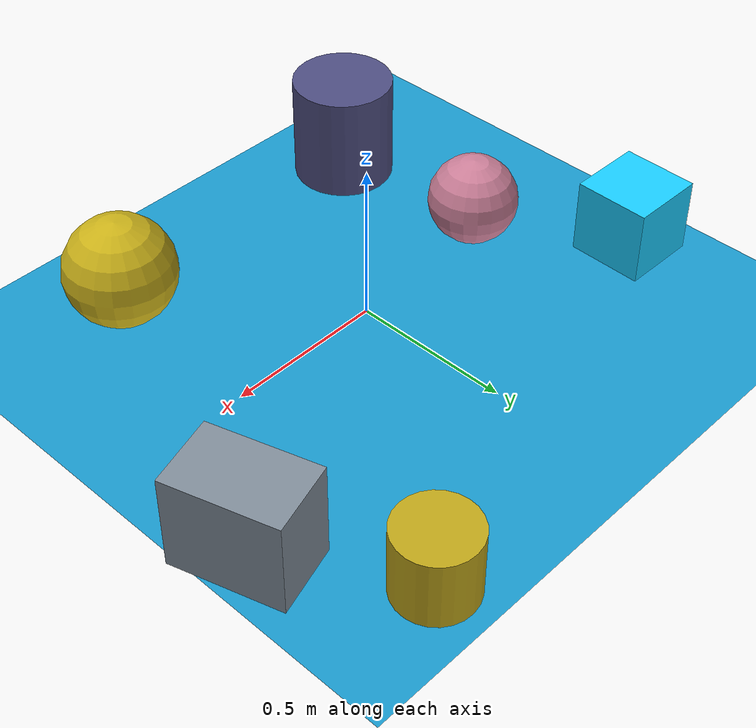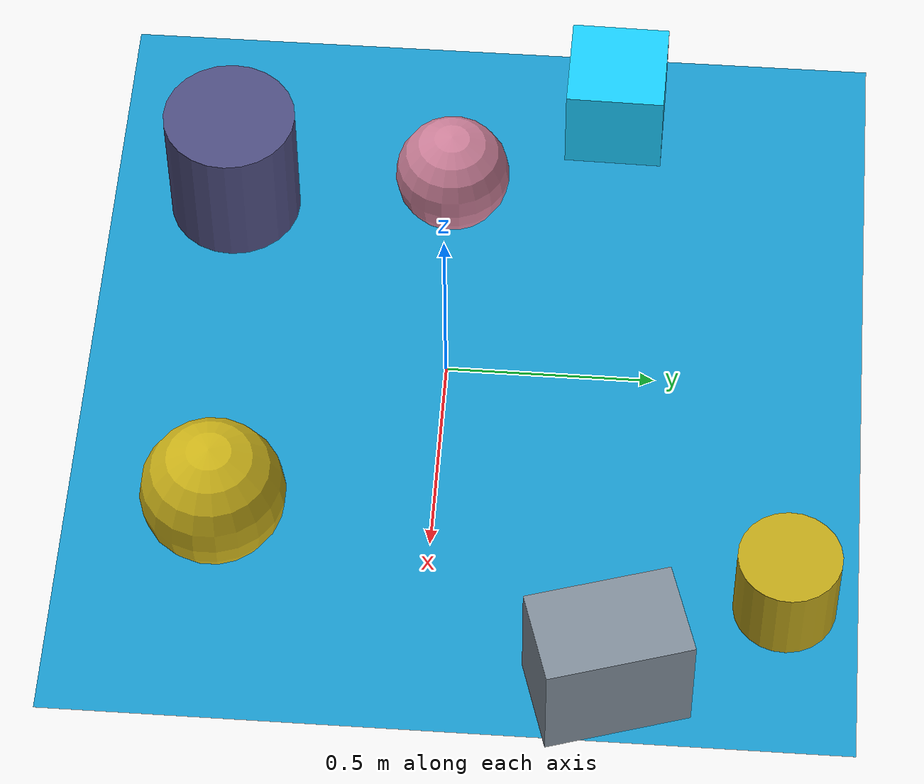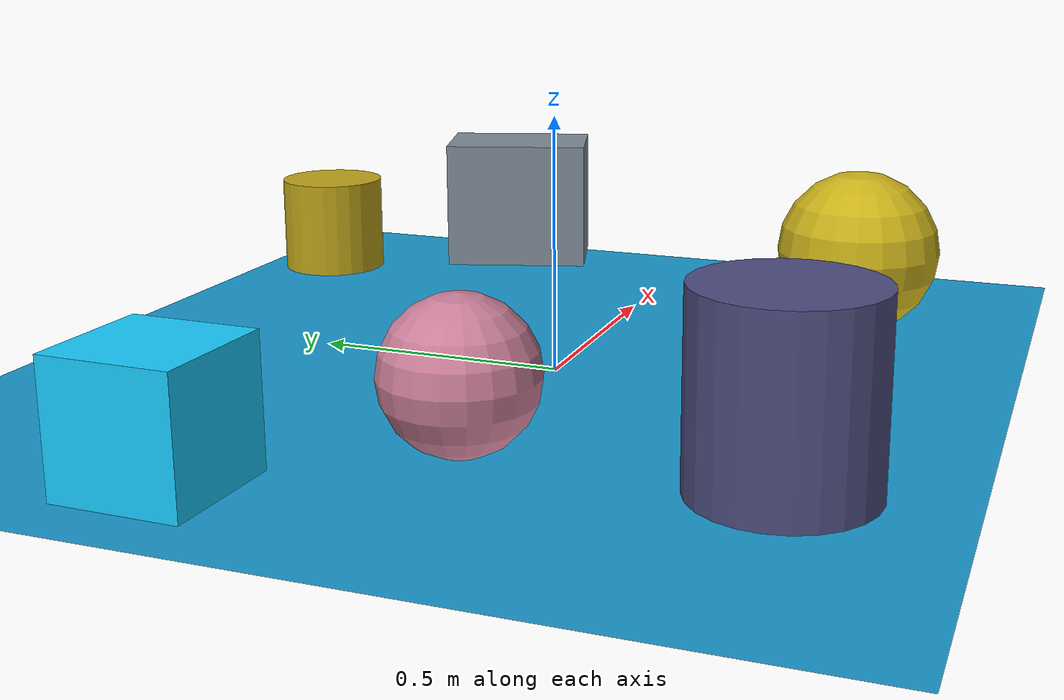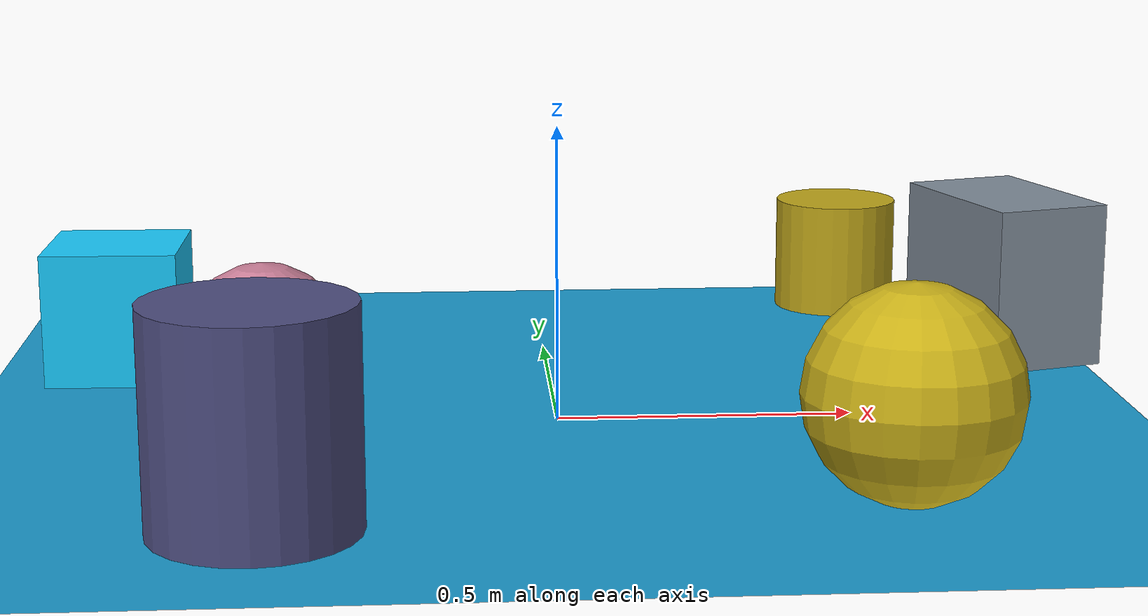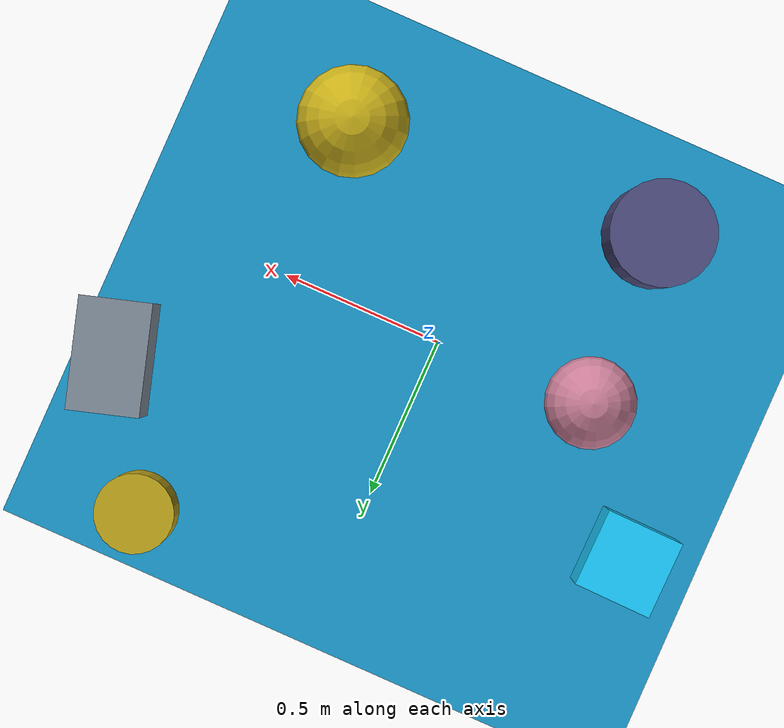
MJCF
<mujoco>
   <asset>
<texture type="skybox" builtin="gradient" rgb1="0.5 0.5 0.1" rgb2="0.1 0.1 0.7" width="256" height="256"/>
<texture name="flat_0" builtin="flat" rgb1="0.3 0.3 0.5" rgb2="0.3 0.3 0.5"  width="200" height="200"/>
<texture name="gradient_1" builtin="gradient" rgb1="0.7 0.7 0.8" rgb2="0.3 0.4 0.4" width="200" height="200"/>
<texture name="flat_2" builtin="flat" rgb1="0.1 0.8 1.0" rgb2="0.1 0.8 1.0"  width="200" height="200"/>
<texture name="flat_3" builtin="flat" rgb1="0.8 0.5 0.6" rgb2="0.8 0.5 0.6"  width="200" height="200"/>
<texture name="flat_4" builtin="flat" rgb1="0.8 0.7 0.1" rgb2="0.8 0.7 0.1"  width="200" height="200"/>
<texture name="checker_5" builtin="checker" rgb1="0.9 0.8 0.1" rgb2="0.6 0.5 0.1" width="200" height="200"/><material name="flat_0_mat" reflectance="0" texture="flat_0" texuniform="true"/>
<material name="gradient_1_mat" reflectance="0" texture="gradient_1" texuniform="true"/>
<material name="flat_2_mat" reflectance="0" texture="flat_2" texuniform="true"/>
<material name="flat_3_mat" reflectance="0" texture="flat_3" texuniform="true"/>
<material name="flat_4_mat" reflectance="0" texture="flat_4" texuniform="true"/>
<material name="checker_5_mat" reflectance="0" texrepeat="2 2" texture="checker_5" texuniform="false" />
   </asset>

   <worldbody>
      <light diffuse=".9 .9 .9" pos="0 0 3" dir="0 0 -1"/>
     <geom type="plane" size="1 1 0.1" rgba="0.1 0.6 0.8 1"/>
<geom type="cylinder" pos="-0.47 -0.56 0.17" size="0.16 0.17 0.17" material="flat_0_mat" euler="0 0 17" />
<geom type="box" pos="0.87 0.43 0.15" size="0.11 0.17 0.15" material="gradient_1_mat" euler="0 0 17" />
<geom type="box" pos="-0.78 0.37 0.12" size="0.12 0.12 0.12" material="flat_2_mat" euler="0 0 89" />
<geom type="sphere" pos="-0.49 -0.02 0.14" size="0.14 0.14 0.14" material="flat_3_mat" euler="0 0 11" />
<geom type="sphere" pos="0.5 -0.5 0.17" size="0.17 0.17 0.17" material="flat_4_mat" euler="0 0 27" />
<geom type="cylinder" pos="0.62 0.83 0.11" size="0.12 0.11 0.11" material="checker_5_mat" euler="0 0 33" /><camera euler="60 0 180" fovy="60" name="camera1" pos="-0.2 -1.5 1"></camera>   </worldbody>
</mujoco>
